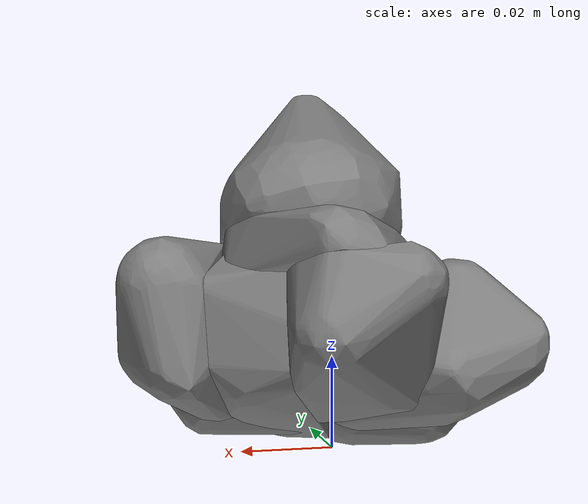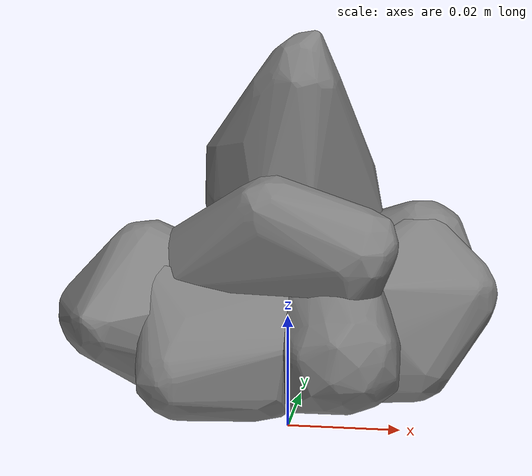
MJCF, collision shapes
<mujoco model="ycb_063-a_marbles">
  <compiler meshdir="meshes" texturedir="meshes" angle="radian"/>
  <default>
    <default class="visual"><geom contype="0" conaffinity="0" group="2" density="0"/></default>
    <default class="collision"><geom group="3"/></default>
  </default>
  <asset>
    <texture name="ycb_063-a_marbles_tex" type="2d" file="ycb_063-a_marbles_texture.png"/>
    <material name="ycb_063-a_marbles_mat" texture="ycb_063-a_marbles_tex" specular="0.2" shininess="0.3"/>
    <mesh name="ycb_063-a_marbles_visual" file="ycb_063-a_marbles_visual.obj"/>
    <mesh name="ycb_063-a_marbles_hull0" file="ycb_063-a_marbles_hull0.obj"/>
    <mesh name="ycb_063-a_marbles_hull1" file="ycb_063-a_marbles_hull1.obj"/>
    <mesh name="ycb_063-a_marbles_hull2" file="ycb_063-a_marbles_hull2.obj"/>
    <mesh name="ycb_063-a_marbles_hull3" file="ycb_063-a_marbles_hull3.obj"/>
    <mesh name="ycb_063-a_marbles_hull4" file="ycb_063-a_marbles_hull4.obj"/>
    <mesh name="ycb_063-a_marbles_hull5" file="ycb_063-a_marbles_hull5.obj"/>
    <mesh name="ycb_063-a_marbles_hull6" file="ycb_063-a_marbles_hull6.obj"/>
    <mesh name="ycb_063-a_marbles_hull7" file="ycb_063-a_marbles_hull7.obj"/>
  </asset>
  <worldbody>
    <body name="object" pos="0 0 0">
      <freejoint name="object_free"/>
      <geom type="mesh" mesh="ycb_063-a_marbles_visual" material="ycb_063-a_marbles_mat" class="visual"/>
      <geom type="mesh" mesh="ycb_063-a_marbles_hull0" class="collision"/>
      <geom type="mesh" mesh="ycb_063-a_marbles_hull1" class="collision"/>
      <geom type="mesh" mesh="ycb_063-a_marbles_hull2" class="collision"/>
      <geom type="mesh" mesh="ycb_063-a_marbles_hull3" class="collision"/>
      <geom type="mesh" mesh="ycb_063-a_marbles_hull4" class="collision"/>
      <geom type="mesh" mesh="ycb_063-a_marbles_hull5" class="collision"/>
      <geom type="mesh" mesh="ycb_063-a_marbles_hull6" class="collision"/>
      <geom type="mesh" mesh="ycb_063-a_marbles_hull7" class="collision"/>
    </body>
  </worldbody>
</mujoco>
